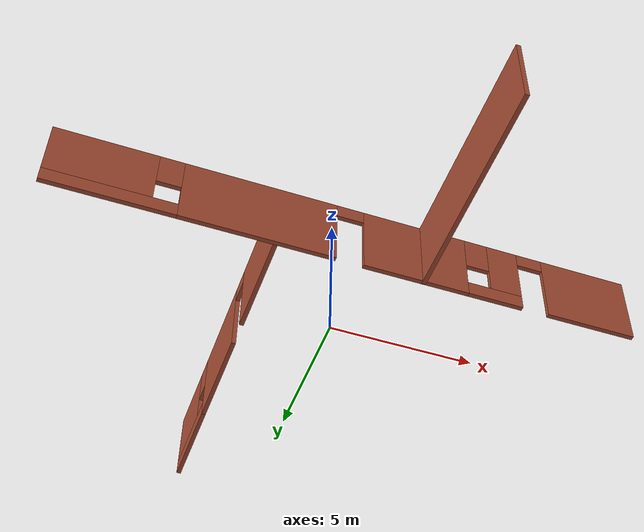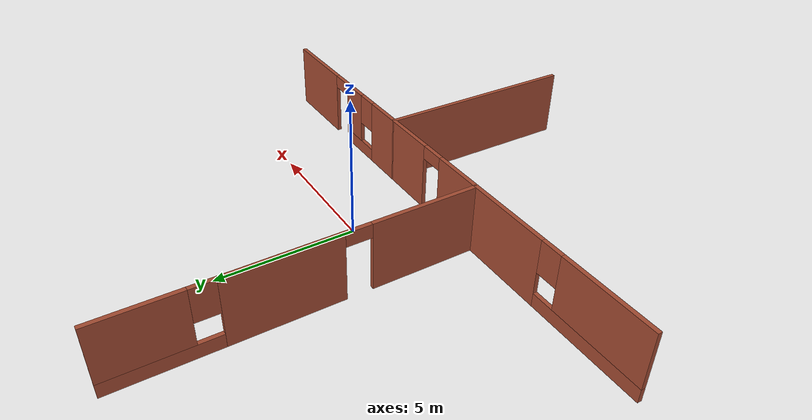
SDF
<?xml version='1.0'?>
<sdf version='1.7'>
  <model name='class_Environment_4'>
    <pose>-0.255255 -0.643635 0 0 -0 0</pose>
    <link name='Wall_13'>
      <pose>-2.50175 3.75264 0 0 -0 1.5708</pose>
      <visual name='Wall_13_Visual_0'>
        <pose>-4.15148 0 1.25 0 -0 0</pose>
        <geometry>
          <box>
            <size>3.79703 0.15 2.5</size>
          </box>
        </geometry>
        <material>
          <script>
            <uri>file://media/materials/scripts/gazebo.material</uri>
            <name>Gazebo/Bricks</name>
          </script>
          <ambient>1 1 1 1</ambient>
        </material>
        <meta>
          <layer>0</layer>
        </meta>
      </visual>
      <collision name='Wall_13_Collision_0'>
        <geometry>
          <box>
            <size>3.79703 0.15 2.5</size>
          </box>
        </geometry>
        <pose>-4.15148 0 1.25 0 -0 0</pose>
      </collision>
      <visual name='Wall_13_Visual_1'>
        <pose>0.563511 0 1.25 0 -0 0</pose>
        <geometry>
          <box>
            <size>3.83296 0.15 2.5</size>
          </box>
        </geometry>
        <material>
          <script>
            <uri>file://media/materials/scripts/gazebo.material</uri>
            <name>Gazebo/Bricks</name>
          </script>
          <ambient>1 1 1 1</ambient>
        </material>
        <meta>
          <layer>0</layer>
        </meta>
      </visual>
      <collision name='Wall_13_Collision_1'>
        <geometry>
          <box>
            <size>3.83296 0.15 2.5</size>
          </box>
        </geometry>
        <pose>0.563511 0 1.25 0 -0 0</pose>
      </collision>
      <visual name='Wall_13_Visual_2'>
        <pose>4.26499 0 0.25 0 -0 0</pose>
        <geometry>
          <box>
            <size>3.57001 0.15 0.5</size>
          </box>
        </geometry>
        <material>
          <script>
            <uri>file://media/materials/scripts/gazebo.material</uri>
            <name>Gazebo/Bricks</name>
          </script>
          <ambient>1 1 1 1</ambient>
        </material>
        <meta>
          <layer>0</layer>
        </meta>
      </visual>
      <collision name='Wall_13_Collision_2'>
        <geometry>
          <box>
            <size>3.57001 0.15 0.5</size>
          </box>
        </geometry>
        <pose>4.26499 0 0.25 0 -0 0</pose>
      </collision>
      <visual name='Wall_13_Visual_3'>
        <pose>4.665 0 1.5 0 -0 0</pose>
        <geometry>
          <box>
            <size>2.77001 0.15 2</size>
          </box>
        </geometry>
        <material>
          <script>
            <uri>file://media/materials/scripts/gazebo.material</uri>
            <name>Gazebo/Bricks</name>
          </script>
          <ambient>1 1 1 1</ambient>
        </material>
        <meta>
          <layer>0</layer>
        </meta>
      </visual>
      <collision name='Wall_13_Collision_3'>
        <geometry>
          <box>
            <size>2.77001 0.15 2</size>
          </box>
        </geometry>
        <pose>4.665 0 1.5 0 -0 0</pose>
      </collision>
      <visual name='Wall_13_Visual_4'>
        <pose>2.87999 0 1.9 0 -0 0</pose>
        <geometry>
          <box>
            <size>0.8 0.15 1.2</size>
          </box>
        </geometry>
        <material>
          <script>
            <uri>file://media/materials/scripts/gazebo.material</uri>
            <name>Gazebo/Bricks</name>
          </script>
          <ambient>1 1 1 1</ambient>
        </material>
        <meta>
          <layer>0</layer>
        </meta>
      </visual>
      <collision name='Wall_13_Collision_4'>
        <geometry>
          <box>
            <size>0.8 0.15 1.2</size>
          </box>
        </geometry>
        <pose>2.87999 0 1.9 0 -0 0</pose>
      </collision>
      <visual name='Wall_13_Visual_5'>
        <pose>-1.80297 0 2.25 0 -0 0</pose>
        <geometry>
          <box>
            <size>0.9 0.15 0.5</size>
          </box>
        </geometry>
        <material>
          <script>
            <uri>file://media/materials/scripts/gazebo.material</uri>
            <name>Gazebo/Bricks</name>
          </script>
          <ambient>1 1 1 1</ambient>
        </material>
        <meta>
          <layer>0</layer>
        </meta>
      </visual>
      <collision name='Wall_13_Collision_5'>
        <geometry>
          <box>
            <size>0.9 0.15 0.5</size>
          </box>
        </geometry>
        <pose>-1.80297 0 2.25 0 -0 0</pose>
      </collision>
    </link>
    <link name='Wall_2'>
      <pose>-3.66025 -2.27737 0 0 -0 3.14159</pose>
      <visual name='Wall_2_Visual_0'>
        <pose>-5.05326 0 1.25 0 -0 0</pose>
        <geometry>
          <box>
            <size>2.12299 0.15 2.5</size>
          </box>
        </geometry>
        <material>
          <script>
            <uri>file://media/materials/scripts/gazebo.material</uri>
            <name>Gazebo/Bricks</name>
          </script>
          <ambient>1 1 1 1</ambient>
        </material>
        <meta>
          <layer>0</layer>
        </meta>
      </visual>
      <collision name='Wall_2_Collision_0'>
        <geometry>
          <box>
            <size>2.12299 0.15 2.5</size>
          </box>
        </geometry>
        <pose>-5.05326 0 1.25 0 -0 0</pose>
      </collision>
      <visual name='Wall_2_Visual_1'>
        <pose>-0.570255 0 1.25 0 -0 0</pose>
        <geometry>
          <box>
            <size>5.04303 0.15 2.5</size>
          </box>
        </geometry>
        <material>
          <script>
            <uri>file://media/materials/scripts/gazebo.material</uri>
            <name>Gazebo/Bricks</name>
          </script>
          <ambient>1 1 1 1</ambient>
        </material>
        <meta>
          <layer>0</layer>
        </meta>
      </visual>
      <collision name='Wall_2_Collision_1'>
        <geometry>
          <box>
            <size>5.04303 0.15 2.5</size>
          </box>
        </geometry>
        <pose>-0.570255 0 1.25 0 -0 0</pose>
      </collision>
      <visual name='Wall_2_Visual_2'>
        <pose>4.03301 0 0.25 0 -0 0</pose>
        <geometry>
          <box>
            <size>4.1635 0.15 0.5</size>
          </box>
        </geometry>
        <material>
          <script>
            <uri>file://media/materials/scripts/gazebo.material</uri>
            <name>Gazebo/Bricks</name>
          </script>
          <ambient>1 1 1 1</ambient>
        </material>
        <meta>
          <layer>0</layer>
        </meta>
      </visual>
      <collision name='Wall_2_Collision_2'>
        <geometry>
          <box>
            <size>4.1635 0.15 0.5</size>
          </box>
        </geometry>
        <pose>4.03301 0 0.25 0 -0 0</pose>
      </collision>
      <visual name='Wall_2_Visual_3'>
        <pose>4.43301 0 1.5 0 -0 0</pose>
        <geometry>
          <box>
            <size>3.3635 0.15 2</size>
          </box>
        </geometry>
        <material>
          <script>
            <uri>file://media/materials/scripts/gazebo.material</uri>
            <name>Gazebo/Bricks</name>
          </script>
          <ambient>1 1 1 1</ambient>
        </material>
        <meta>
          <layer>0</layer>
        </meta>
      </visual>
      <collision name='Wall_2_Collision_3'>
        <geometry>
          <box>
            <size>3.3635 0.15 2</size>
          </box>
        </geometry>
        <pose>4.43301 0 1.5 0 -0 0</pose>
      </collision>
      <visual name='Wall_2_Visual_4'>
        <pose>2.35126 0 1.9 0 -0 0</pose>
        <geometry>
          <box>
            <size>0.8 0.15 1.2</size>
          </box>
        </geometry>
        <material>
          <script>
            <uri>file://media/materials/scripts/gazebo.material</uri>
            <name>Gazebo/Bricks</name>
          </script>
          <ambient>1 1 1 1</ambient>
        </material>
        <meta>
          <layer>0</layer>
        </meta>
      </visual>
      <collision name='Wall_2_Collision_4'>
        <geometry>
          <box>
            <size>0.8 0.15 1.2</size>
          </box>
        </geometry>
        <pose>2.35126 0 1.9 0 -0 0</pose>
      </collision>
      <visual name='Wall_2_Visual_5'>
        <pose>-3.54177 0 2.25 0 -0 0</pose>
        <geometry>
          <box>
            <size>0.9 0.15 0.5</size>
          </box>
        </geometry>
        <material>
          <script>
            <uri>file://media/materials/scripts/gazebo.material</uri>
            <name>Gazebo/Bricks</name>
          </script>
          <ambient>1 1 1 1</ambient>
        </material>
        <meta>
          <layer>0</layer>
        </meta>
      </visual>
      <collision name='Wall_2_Collision_5'>
        <geometry>
          <box>
            <size>0.9 0.15 0.5</size>
          </box>
        </geometry>
        <pose>-3.54177 0 2.25 0 -0 0</pose>
      </collision>
    </link>
    <link name='Wall_4'>
      <collision name='Wall_4_Collision'>
        <geometry>
          <box>
            <size>7.6 0.15 2.5</size>
          </box>
        </geometry>
        <pose>0 0 1.25 0 -0 0</pose>
      </collision>
      <visual name='Wall_4_Visual'>
        <pose>0 0 1.25 0 -0 0</pose>
        <geometry>
          <box>
            <size>7.6 0.15 2.5</size>
          </box>
        </geometry>
        <material>
          <script>
            <uri>file://media/materials/scripts/gazebo.material</uri>
            <name>Gazebo/Bricks</name>
          </script>
          <ambient>1 1 1 1</ambient>
        </material>
        <meta>
          <layer>0</layer>
        </meta>
      </visual>
      <pose>2.36425 -6.00237 0 0 -0 -1.57482</pose>
    </link>
    <link name='Wall_6'>
      <pose>6.03976 -2.27737 0 0 -0 0</pose>
      <visual name='Wall_6_Visual_0'>
        <pose>-2.94317 0 1.25 0 -0 0</pose>
        <geometry>
          <box>
            <size>1.58416 0.15 2.5</size>
          </box>
        </geometry>
        <material>
          <script>
            <uri>file://media/materials/scripts/gazebo.material</uri>
            <name>Gazebo/Bricks</name>
          </script>
          <ambient>1 1 1 1</ambient>
        </material>
        <meta>
          <layer>0</layer>
        </meta>
      </visual>
      <collision name='Wall_6_Collision_0'>
        <geometry>
          <box>
            <size>1.58416 0.15 2.5</size>
          </box>
        </geometry>
        <pose>-2.94317 0 1.25 0 -0 0</pose>
      </collision>
      <visual name='Wall_6_Visual_1'>
        <pose>2.18651 0 1.25 0 -0 0</pose>
        <geometry>
          <box>
            <size>3.09748 0.15 2.5</size>
          </box>
        </geometry>
        <material>
          <script>
            <uri>file://media/materials/scripts/gazebo.material</uri>
            <name>Gazebo/Bricks</name>
          </script>
          <ambient>1 1 1 1</ambient>
        </material>
        <meta>
          <layer>0</layer>
        </meta>
      </visual>
      <collision name='Wall_6_Collision_1'>
        <geometry>
          <box>
            <size>3.09748 0.15 2.5</size>
          </box>
        </geometry>
        <pose>2.18651 0 1.25 0 -0 0</pose>
      </collision>
      <visual name='Wall_6_Visual_2'>
        <pose>-1.20666 0 0.25 0 -0 0</pose>
        <geometry>
          <box>
            <size>1.88886 0.15 0.5</size>
          </box>
        </geometry>
        <material>
          <script>
            <uri>file://media/materials/scripts/gazebo.material</uri>
            <name>Gazebo/Bricks</name>
          </script>
          <ambient>1 1 1 1</ambient>
        </material>
        <meta>
          <layer>0</layer>
        </meta>
      </visual>
      <collision name='Wall_6_Collision_2'>
        <geometry>
          <box>
            <size>1.88886 0.15 0.5</size>
          </box>
        </geometry>
        <pose>-1.20666 0 0.25 0 -0 0</pose>
      </collision>
      <visual name='Wall_6_Visual_3'>
        <pose>-0.806659 0 1.5 0 -0 0</pose>
        <geometry>
          <box>
            <size>1.08886 0.15 2</size>
          </box>
        </geometry>
        <material>
          <script>
            <uri>file://media/materials/scripts/gazebo.material</uri>
            <name>Gazebo/Bricks</name>
          </script>
          <ambient>1 1 1 1</ambient>
        </material>
        <meta>
          <layer>0</layer>
        </meta>
      </visual>
      <collision name='Wall_6_Collision_3'>
        <geometry>
          <box>
            <size>1.08886 0.15 2</size>
          </box>
        </geometry>
        <pose>-0.806659 0 1.5 0 -0 0</pose>
      </collision>
      <visual name='Wall_6_Visual_4'>
        <pose>-1.75109 0 1.9 0 -0 0</pose>
        <geometry>
          <box>
            <size>0.8 0.15 1.2</size>
          </box>
        </geometry>
        <material>
          <script>
            <uri>file://media/materials/scripts/gazebo.material</uri>
            <name>Gazebo/Bricks</name>
          </script>
          <ambient>1 1 1 1</ambient>
        </material>
        <meta>
          <layer>0</layer>
        </meta>
      </visual>
      <collision name='Wall_6_Collision_4'>
        <geometry>
          <box>
            <size>0.8 0.15 1.2</size>
          </box>
        </geometry>
        <pose>-1.75109 0 1.9 0 -0 0</pose>
      </collision>
      <visual name='Wall_6_Visual_5'>
        <pose>0.187769 0 2.25 0 -0 0</pose>
        <geometry>
          <box>
            <size>0.9 0.15 0.5</size>
          </box>
        </geometry>
        <material>
          <script>
            <uri>file://media/materials/scripts/gazebo.material</uri>
            <name>Gazebo/Bricks</name>
          </script>
          <ambient>1 1 1 1</ambient>
        </material>
        <meta>
          <layer>0</layer>
        </meta>
      </visual>
      <collision name='Wall_6_Collision_5'>
        <geometry>
          <box>
            <size>0.9 0.15 0.5</size>
          </box>
        </geometry>
        <pose>0.187769 0 2.25 0 -0 0</pose>
      </collision>
    </link>
    <static>1</static>
  </model>
</sdf>
